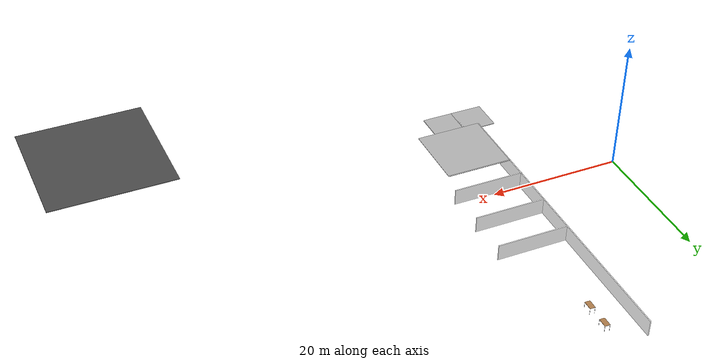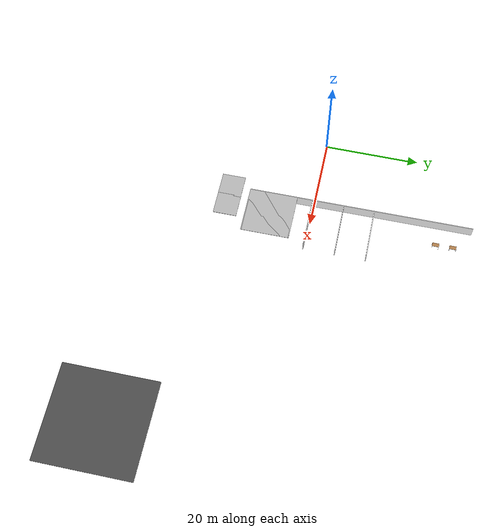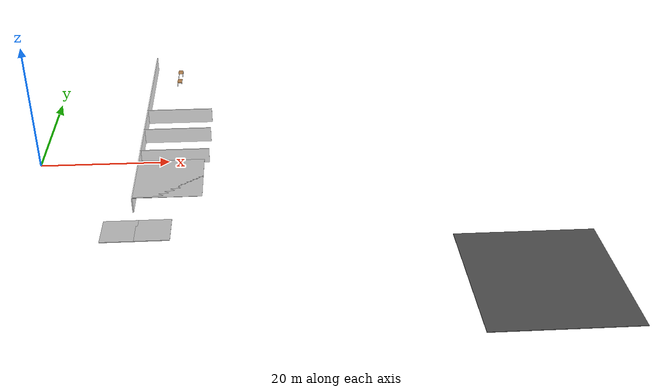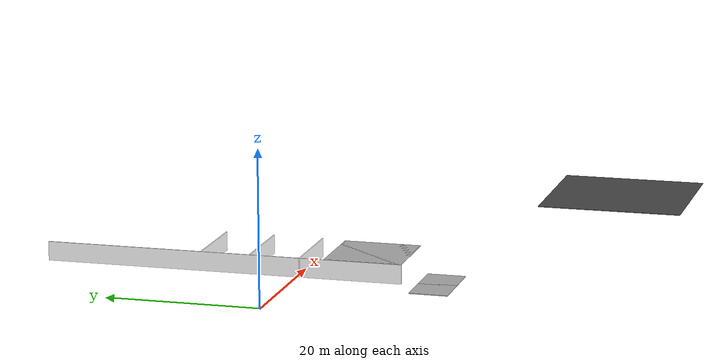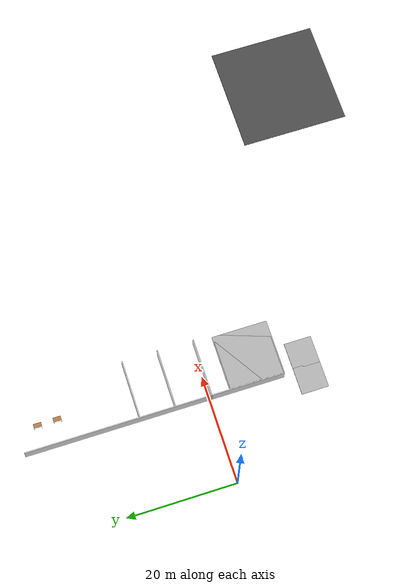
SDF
<sdf version="1.6">
 <world name="default">
  <model name="mainoffice">
   <pose>42.7555 15.4488 0 0 -0 0</pose>
   <link name="Wall_35">
    <collision name="Wall_35_Collision">
     <geometry><box><size>47.25 0.15 2.5</size></box></geometry>
     <pose>0 0 1.25 0 -0 0</pose>
    </collision>
    <visual name="Wall_35_Visual">
     <pose>0 0 1.25 0 -0 0</pose>
     <geometry><box><size>47.25 0.15 2.5</size></box></geometry>
     <material>
      <script>
       <uri>model://office_env/materials/scripts</uri>
       <uri>model://office_env/materials/textures</uri>
       <name>wall</name>
      </script>
      <ambient>1 1 1 1</ambient>
     </material>
    </visual>
    <pose>-27.0991 -5.575 0 0 -0 1.5708</pose>
   </link>
   <link name="Wall_63">
    <collision name="Wall_63_Collision">
     <geometry><box><size>10.75 0.15 2.5</size></box></geometry>
     <pose>0 0 1.25 0 -0 0</pose>
    </collision>
    <visual name="Wall_63_Visual">
     <pose>0 0 1.25 0 -0 0</pose>
     <geometry><box><size>10.75 0.15 2.5</size></box></geometry>
     <material>
      <script>
       <uri>model://office_env/materials/scripts</uri>
       <uri>model://office_env/materials/textures</uri>
       <name>wall</name>
      </script>
      <ambient>1 1 1 1</ambient>
     </material>
    </visual>
    <pose>-21.7491 -2.675 0 0 -0 3.14159</pose>
   </link>
   <link name="Wall_69">
    <collision name="Wall_69_Collision">
     <geometry><box><size>10.75 0.15 2.5</size></box></geometry>
     <pose>0 0 1.25 0 -0 0</pose>
    </collision>
    <visual name="Wall_69_Visual">
     <pose>0 0 1.25 0 -0 0</pose>
     <geometry><box><size>10.75 0.15 2.5</size></box></geometry>
     <material>
      <script>
       <uri>model://office_env/materials/scripts</uri>
       <uri>model://office_env/materials/textures</uri>
       <name>wall</name>
      </script>
      <ambient>1 1 1 1</ambient>
     </material>
    </visual>
    <pose>-21.8396 -15.8176 0 0 -0 3.14159</pose>
   </link>
   <link name="Wall_71">
    <collision name="Wall_71_Collision">
     <geometry><box><size>10.75 0.15 2.5</size></box></geometry>
     <pose>0 0 1.25 0 -0 0</pose>
    </collision>
    <visual name="Wall_71_Visual">
     <pose>0 0 1.25 0 -0 0</pose>
     <geometry><box><size>10.75 0.15 2.5</size></box></geometry>
     <material>
      <script>
       <uri>model://office_env/materials/scripts</uri>
       <uri>model://office_env/materials/textures</uri>
       <name>wall</name>
      </script>
      <ambient>1 1 1 1</ambient>
     </material>
    </visual>
    <pose>-21.7518 -9.17769 0 0 -0 3.14159</pose>
   </link>
   <static>1</static>
  </model>
  <model name="asphalt_plane">
   <static>1</static>
   <link name="link">
    <collision name="collision"><geometry><box><size>20 20 0.1</size></box></geometry></collision>
    <visual name="visual">
     <cast_shadows>0</cast_shadows>
     <geometry><box><size>20 20 0.1</size></box></geometry>
     <material>
      <script>
       <uri>model://asphalt_plane/materials/scripts</uri>
       <uri>model://asphalt_plane/materials/textures</uri>
       <name>vrc/asphalt</name>
      </script>
     </material>
    </visual>
   </link>
   <pose>70.7475 -31.5972 0 0 -0 0</pose>
  </model>
  <model name="table_3">
   <static>0</static>
   <link name="link">
    <collision name="surface">
     <pose>0 0 1 0 -0 0</pose>
     <geometry><box><size>1.5 0.8 0.03</size></box></geometry>
     <surface><friction><ode><mu>0.6</mu><mu2>0.6</mu2></ode></friction></surface>
    </collision>
    <visual name="visual1">
     <pose>0 0 1 0 -0 0</pose>
     <geometry><box><size>1.4 0.8 0.04</size></box></geometry>
     <material>
      <script><uri>file://media/materials/scripts/gazebo.material</uri><name>Gazebo/Wood</name></script>
     </material>
    </visual>
    <collision name="front_left_leg">
     <pose>0.68 0.38 0.5 0 -0 0</pose>
     <geometry><cylinder><radius>0.02</radius><length>1</length></cylinder></geometry>
    </collision>
    <visual name="front_left_leg">
     <pose>0.68 0.38 0.5 0 -0 0</pose>
     <geometry><cylinder><radius>0.02</radius><length>1</length></cylinder></geometry>
     <material>
      <script>
       <uri>model://office_env/materials/scripts</uri>
       <uri>model://office_env/materials/textures</uri>
       <name>wall</name>
      </script>
     </material>
    </visual>
    <collision name="front_right_leg">
     <pose>0.68 -0.38 0.5 0 -0 0</pose>
     <geometry><cylinder><radius>0.02</radius><length>1</length></cylinder></geometry>
    </collision>
    <visual name="front_right_leg">
     <pose>0.68 -0.38 0.5 0 -0 0</pose>
     <geometry><cylinder><radius>0.02</radius><length>1</length></cylinder></geometry>
     <material>
      <script>
       <uri>model://office_env/materials/scripts</uri>
       <uri>model://office_env/materials/textures</uri>
       <name>wall</name>
      </script>
     </material>
    </visual>
    <collision name="back_right_leg">
     <pose>-0.68 -0.38 0.5 0 -0 0</pose>
     <geometry><cylinder><radius>0.02</radius><length>1</length></cylinder></geometry>
    </collision>
    <visual name="back_right_leg">
     <pose>-0.68 -0.38 0.5 0 -0 0</pose>
     <geometry><cylinder><radius>0.02</radius><length>1</length></cylinder></geometry>
     <material>
      <script>
       <uri>model://office_env/materials/scripts</uri>
       <uri>model://office_env/materials/textures</uri>
       <name>wall</name>
      </script>
     </material>
    </visual>
    <collision name="back_left_leg">
     <pose>-0.68 0.38 0.5 0 -0 0</pose>
     <geometry><cylinder><radius>0.02</radius><length>1</length></cylinder></geometry>
    </collision>
    <visual name="back_left_leg">
     <pose>-0.68 0.38 0.5 0 -0 0</pose>
     <geometry><cylinder><radius>0.02</radius><length>1</length></cylinder></geometry>
     <material>
      <script>
       <uri>model://office_env/materials/scripts</uri>
       <uri>model://office_env/materials/textures</uri>
       <name>wall</name>
      </script>
     </material>
    </visual>
    <inertial>
     <inertia><ixx>1</ixx><ixy>0</ixy><ixz>0</ixz><iyy>1</iyy><iyz>0</iyz><izz>1</izz></inertia>
     <mass>1</mass>
    </inertial>
   </link>
   <pose>20.1295 30.0365 0.034999 0 0 -1.58064</pose>
  </model>
  <model name="table_3_clone">
   <static>0</static>
   <link name="link">
    <collision name="surface">
     <pose>0 0 1 0 -0 0</pose>
     <geometry><box><size>1.5 0.8 0.03</size></box></geometry>
     <surface><friction><ode><mu>0.6</mu><mu2>0.6</mu2></ode></friction></surface>
    </collision>
    <visual name="visual1">
     <pose>0 0 1 0 -0 0</pose>
     <geometry><box><size>1.4 0.8 0.04</size></box></geometry>
     <material>
      <script><uri>file://media/materials/scripts/gazebo.material</uri><name>Gazebo/Wood</name></script>
     </material>
    </visual>
    <collision name="front_left_leg">
     <pose>0.68 0.38 0.5 0 -0 0</pose>
     <geometry><cylinder><radius>0.02</radius><length>1</length></cylinder></geometry>
    </collision>
    <visual name="front_left_leg">
     <pose>0.68 0.38 0.5 0 -0 0</pose>
     <geometry><cylinder><radius>0.02</radius><length>1</length></cylinder></geometry>
     <material>
      <script>
       <uri>model://office_env/materials/scripts</uri>
       <uri>model://office_env/materials/textures</uri>
       <name>wall</name>
      </script>
     </material>
    </visual>
    <collision name="front_right_leg">
     <pose>0.68 -0.38 0.5 0 -0 0</pose>
     <geometry><cylinder><radius>0.02</radius><length>1</length></cylinder></geometry>
    </collision>
    <visual name="front_right_leg">
     <pose>0.68 -0.38 0.5 0 -0 0</pose>
     <geometry><cylinder><radius>0.02</radius><length>1</length></cylinder></geometry>
     <material>
      <script>
       <uri>model://office_env/materials/scripts</uri>
       <uri>model://office_env/materials/textures</uri>
       <name>wall</name>
      </script>
     </material>
    </visual>
    <collision name="back_right_leg">
     <pose>-0.68 -0.38 0.5 0 -0 0</pose>
     <geometry><cylinder><radius>0.02</radius><length>1</length></cylinder></geometry>
    </collision>
    <visual name="back_right_leg">
     <pose>-0.68 -0.38 0.5 0 -0 0</pose>
     <geometry><cylinder><radius>0.02</radius><length>1</length></cylinder></geometry>
     <material>
      <script>
       <uri>model://office_env/materials/scripts</uri>
       <uri>model://office_env/materials/textures</uri>
       <name>wall</name>
      </script>
     </material>
    </visual>
    <collision name="back_left_leg">
     <pose>-0.68 0.38 0.5 0 -0 0</pose>
     <geometry><cylinder><radius>0.02</radius><length>1</length></cylinder></geometry>
    </collision>
    <visual name="back_left_leg">
     <pose>-0.68 0.38 0.5 0 -0 0</pose>
     <geometry><cylinder><radius>0.02</radius><length>1</length></cylinder></geometry>
     <material>
      <script>
       <uri>model://office_env/materials/scripts</uri>
       <uri>model://office_env/materials/textures</uri>
       <name>wall</name>
      </script>
     </material>
    </visual>
    <inertial>
     <inertia><ixx>1</ixx><ixy>0</ixy><ixz>0</ixz><iyy>1</iyy><iyz>0</iyz><izz>1</izz></inertia>
     <mass>1</mass>
    </inertial>
   </link>
   <pose>20.1673 26.4749 0.034999 0 0 -1.58064</pose>
  </model>
  <model name="outdoor_plane_27">
   <static>1</static>
   <link name="link">
    <collision name="collision"><geometry><box><size>5 5 0.1</size></box></geometry></collision>
    <visual name="visual">
     <cast_shadows>0</cast_shadows>
     <geometry><box><size>5 5 0.1</size></box></geometry>
     <material>
      <script>
       <uri>model://outdoor_planesmall/materials/scripts</uri>
       <uri>model://outdoor_planesmall/materials/textures</uri>
       <name>outdss/Image</name>
      </script>
     </material>
    </visual>
   </link>
   <pose>18.8599 -18.2392 0 0 -0 0</pose>
  </model>
  <model name="outdoor_plane_28">
   <static>1</static>
   <link name="link">
    <collision name="collision"><geometry><box><size>5 5 0.1</size></box></geometry></collision>
    <visual name="visual">
     <cast_shadows>0</cast_shadows>
     <geometry><box><size>5 5 0.1</size></box></geometry>
     <material>
      <script>
       <uri>model://outdoor_planesmall/materials/scripts</uri>
       <uri>model://outdoor_planesmall/materials/textures</uri>
       <name>outdss/Image</name>
      </script>
     </material>
    </visual>
   </link>
   <pose>14.1258 -18.2496 0 0 -0 0</pose>
  </model>
  <model name="Floor_3_clone_10_clone_6">
   <link name="main">
    <pose>0 0 0.01 0 -0 0</pose>
    <collision name="main_Collision"><geometry><box><size>10 10 0.05</size></box></geometry></collision>
    <visual name="main_Visual">
     <geometry><box><size>10 10 0.05</size></box></geometry>
     <material>
      <script>
       <uri>model://Floor_small/materials/scripts</uri>
       <uri>model://Floor_small/materials/textures</uri>
       <name>floor</name>
      </script>
     </material>
    </visual>
   </link>
   <static>1</static>
   <pose>20.7159 -8.58363 2.5 0 -0 0</pose>
  </model>
  <model name="Floor_3_clone_10_clone_7">
   <link name="main">
    <pose>0 0 0.01 0 -0 0</pose>
    <collision name="main_Collision"><geometry><box><size>10 10 0.05</size></box></geometry></collision>
    <visual name="main_Visual">
     <geometry><box><size>10 10 0.05</size></box></geometry>
     <material>
      <script>
       <uri>model://Floor_small/materials/scripts</uri>
       <uri>model://Floor_small/materials/textures</uri>
       <name>floor</name>
      </script>
     </material>
    </visual>
   </link>
   <static>1</static>
   <pose>20.7262 -8.765 2.5 0 -0 0</pose>
  </model>
 </world>
</sdf>
